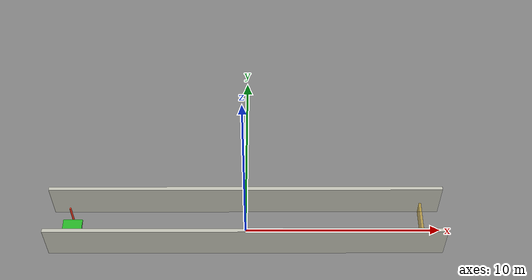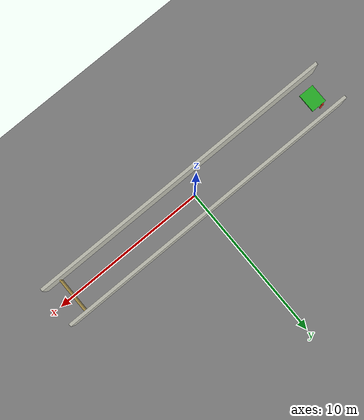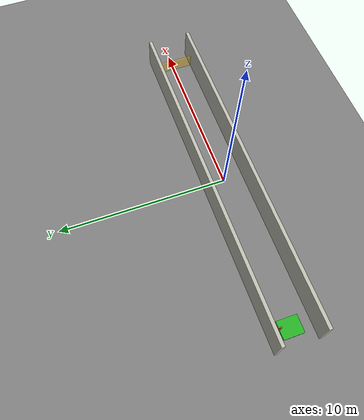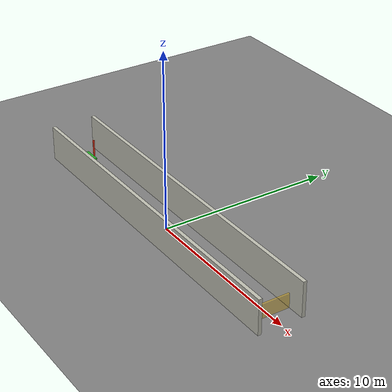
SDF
<?xml version='1.0'?>
<sdf version='1.8'>
  <world name='niihan_patrol_world'>

    <plugin
      filename="gz-sim-physics-system"
      name="gz::sim::systems::Physics">
    </plugin>
    <plugin
      filename="gz-sim-user-commands-system"
      name="gz::sim::systems::UserCommands">
    </plugin>
    <plugin
      filename="gz-sim-scene-broadcaster-system"
      name="gz::sim::systems::SceneBroadcaster">
    </plugin>
    <plugin
      filename="gz-sim-sensors-system"
      name="gz::sim::systems::Sensors">
      <render_engine>ogre2</render_engine>
    </plugin>
    <plugin
      filename="gz-sim-imu-system"
      name="gz::sim::systems::Imu">
    </plugin>
    <plugin
      filename="gz-sim-navsat-system"
      name="gz::sim::systems::NavSat">
    </plugin>
    <plugin
      filename="gz-sim-contact-system"
      name="gz::sim::systems::Contact">
    </plugin>

    <physics name='default_physics' type='ode'>
      <max_step_size>0.001</max_step_size>
      <real_time_factor>1.0</real_time_factor>
      <real_time_update_rate>1000</real_time_update_rate>
      <ode>
        <solver>
          <type>quick</type>
          <iters>50</iters>
        </solver>
      </ode>
    </physics>
    <gravity>0 0 -9.81</gravity>

    <scene>
      <ambient>0.05 0.05 0.08 1</ambient>
      <background>0.02 0.02 0.05 1</background>
      <shadows>true</shadows>
    </scene>

    <light type='directional' name='sun'>
      <cast_shadows>true</cast_shadows>
      <pose>0 0 15 0 0 0</pose>
      <diffuse>0.9 0.9 0.85 1</diffuse>
      <specular>0.2 0.2 0.2 1</specular>
      <direction>-0.4 0.2 -0.9</direction>
    </light>

    <model name='ground_plane'>
      <static>true</static>
      <link name='link'>
        <collision name='collision'>
          <geometry>
            <plane>
              <normal>0 0 1</normal>
              <size>60 20</size>
            </plane>
          </geometry>
          <surface>
            <friction>
              <ode>
                <mu>0.9</mu>
                <mu2>0.9</mu2>
              </ode>
            </friction>
          </surface>
        </collision>
        <visual name='visual'>
          <geometry>
            <plane>
              <normal>0 0 1</normal>
              <size>60 20</size>
            </plane>
          </geometry>
          <material>
            <ambient>0.05 0.05 0.08 1</ambient>
            <diffuse>0.5 0.5 0.5 1</diffuse>
          </material>
        </visual>
      </link>
    </model>

    <!-- Patrol corridor: two parallel walls, 2.5m apart, running 20m along X, centered at origin -->
    <model name='corridor_wall_north'>
      <static>true</static>
      <pose>0 1.25 1.0 0 0 0</pose>
      <link name='link'>
        <collision name='collision'>
          <geometry><box><size>20 0.2 2.0</size></box></geometry>
        </collision>
        <visual name='visual'>
          <geometry><box><size>20 0.2 2.0</size></box></geometry>
          <material>
            <ambient>0.7 0.7 0.65 1</ambient>
            <diffuse>0.75 0.75 0.7 1</diffuse>
          </material>
        </visual>
      </link>
    </model>

    <model name='corridor_wall_south'>
      <static>true</static>
      <pose>0 -1.25 1.0 0 0 0</pose>
      <link name='link'>
        <collision name='collision'>
          <geometry><box><size>20 0.2 2.0</size></box></geometry>
        </collision>
        <visual name='visual'>
          <geometry><box><size>20 0.2 2.0</size></box></geometry>
          <material>
            <ambient>0.7 0.7 0.65 1</ambient>
            <diffuse>0.75 0.75 0.7 1</diffuse>
          </material>
        </visual>
      </link>
    </model>

    <!-- Charging dock at the west end of the corridor (x = -9) -->
    <model name='charging_dock'>
      <static>true</static>
      <pose>-9 0 0.05 0 0 0</pose>
      <link name='link'>
        <collision name='collision'>
          <geometry><box><size>1.0 1.2 0.1</size></box></geometry>
        </collision>
        <visual name='visual'>
          <geometry><box><size>1.0 1.2 0.1</size></box></geometry>
          <material>
            <ambient>0.1 0.6 0.1 1</ambient>
            <diffuse>0.15 0.7 0.15 1</diffuse>
          </material>
        </visual>
      </link>
    </model>

    <model name='dock_marker_post'>
      <static>true</static>
      <pose>-9 0.7 0.5 0 0 0</pose>
      <link name='link'>
        <collision name='collision'>
          <geometry><cylinder><radius>0.05</radius><length>1.0</length></cylinder></geometry>
        </collision>
        <visual name='visual'>
          <geometry><cylinder><radius>0.05</radius><length>1.0</length></cylinder></geometry>
          <material>
            <ambient>0.9 0.2 0.1 1</ambient>
            <diffuse>0.9 0.2 0.1 1</diffuse>
          </material>
        </visual>
      </link>
    </model>

    <!-- Geofence boundary markers at east end of corridor (x = 9), used by GNSS/geofence scenarios -->
    <model name='geofence_marker_east'>
      <static>true</static>
      <pose>9 0 0.4 0 0 0</pose>
      <link name='link'>
        <visual name='visual'>
          <geometry><box><size>0.1 2.4 0.8</size></box></geometry>
          <material>
            <ambient>0.9 0.7 0.1 0.5</ambient>
            <diffuse>0.9 0.7 0.1 0.5</diffuse>
          </material>
        </visual>
      </link>
    </model>

  </world>
</sdf>
